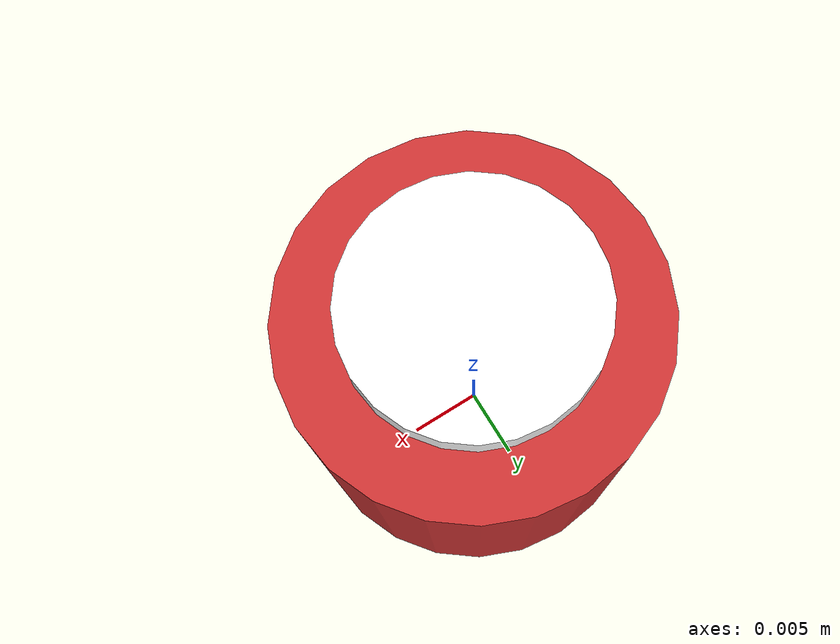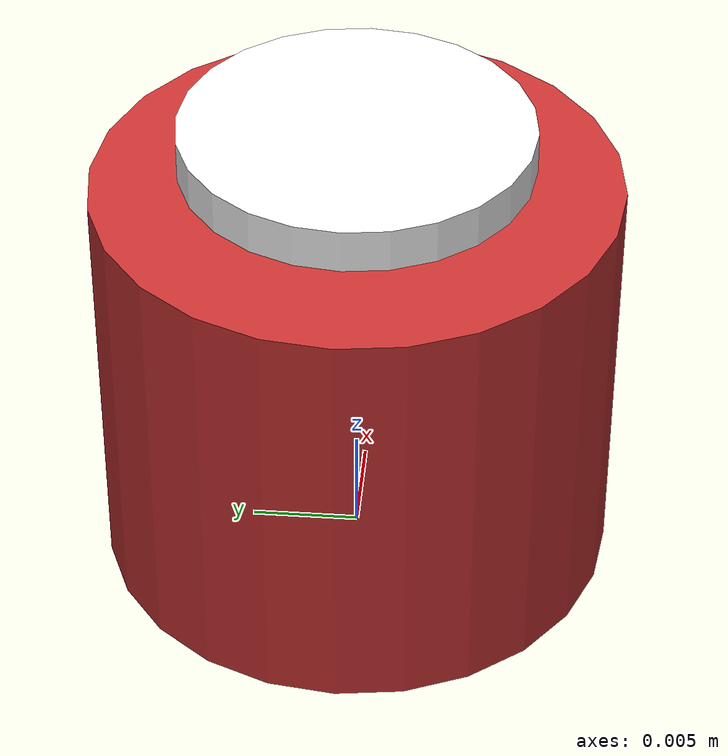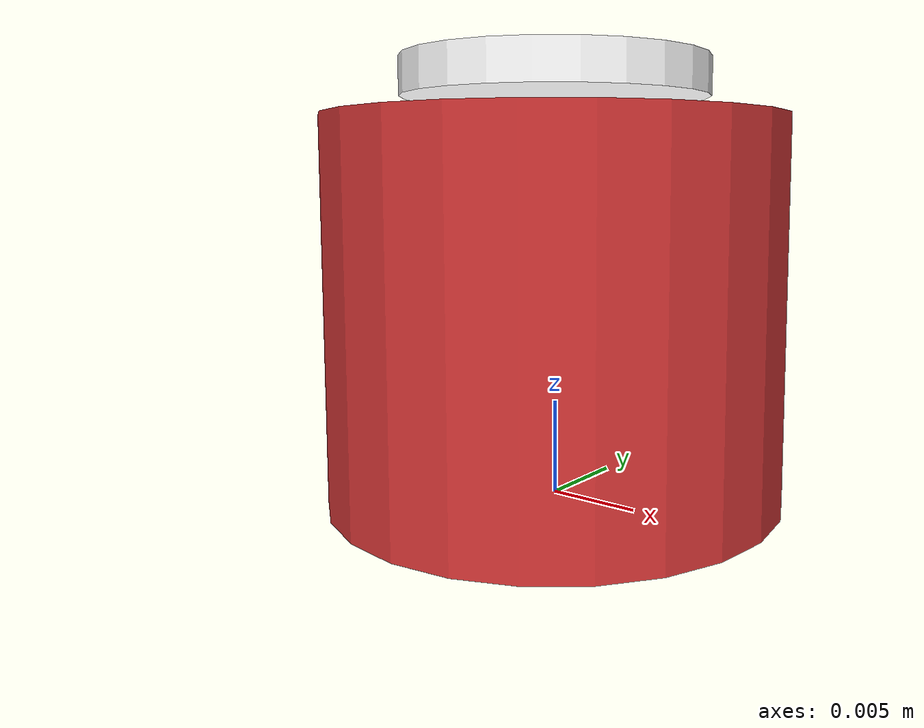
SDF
<?xml version="1.0"?>
<sdf version="1.7">
  <model name="chess_piece">
    <link name="piece">
      <pose>0 0 0.01 0 0 0</pose>

      <!-- 碰撞模型 -->
      <collision name="collision">
        <geometry>
          <cylinder>
            <radius>0.012</radius>
            <length>0.02</length>
          </cylinder>
        </geometry>
        <surface>
          <friction>
            <ode>
              <mu>0.8</mu>
              <mu2>0.8</mu2>
            </ode>
          </friction>
          <contact>
            <ode>
              <kp>1000000</kp>
              <kd>1</kd>
            </ode>
          </contact>
        </surface>
      </collision>

      <!-- 视觉模型 -->
      <visual name="visual">
        <geometry>
          <cylinder>
            <radius>0.012</radius>
            <length>0.02</length>
          </cylinder>
        </geometry>
        <material>
          <ambient>0.8 0.2 0.2 1</ambient>
          <diffuse>0.8 0.2 0.2 1</diffuse>
          <specular>0.1 0.1 0.1 1</specular>
        </material>
      </visual>

      <!-- 惯性属性 -->
      <inertial>
        <mass>0.05</mass>
        <pose>0 0 0.01 0 0 0</pose>
        <inertia>
          <ixx>0.00001</ixx>
          <iyy>0.00001</iyy>
          <izz>0.000005</izz>
          <ixy>0</ixy>
          <ixz>0</ixz>
          <iyz>0</iyz>
        </inertia>
      </inertial>
    </link>

    <!-- 顶部标记（用于识别棋子类型） -->
    <link name="piece_marker">
      <pose>0 0 0.022 0 0 0</pose>
      <visual name="marker_visual">
        <geometry>
          <cylinder>
            <radius>0.008</radius>
            <length>0.002</length>
          </cylinder>
        </geometry>
        <material>
          <ambient>1 1 1 1</ambient>
          <diffuse>1 1 1 1</diffuse>
          <specular>0.2 0.2 0.2 1</specular>
        </material>
      </visual>
    </link>

    <joint name="marker_joint" type="fixed">
      <parent>piece</parent>
      <child>piece_marker</child>
    </joint>

    <!-- 插件用于动态控制棋子 -->
    <plugin name="piece_plugin" filename="libgazebo_ros_force.so">
      <robotNamespace>/chess_piece</robotNamespace>
      <bodyName>piece</bodyName>
      <topicName>force</topicName>
    </plugin>
  </model>
</sdf>
